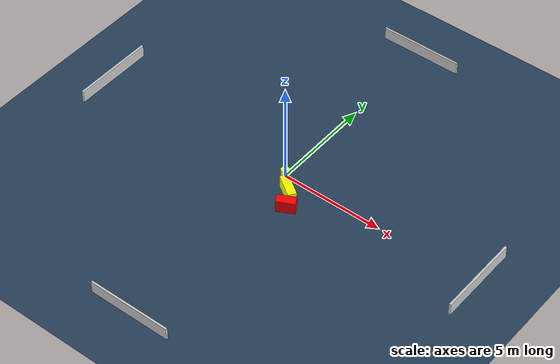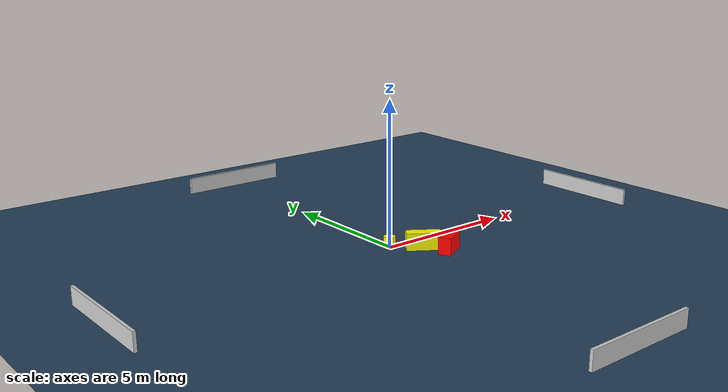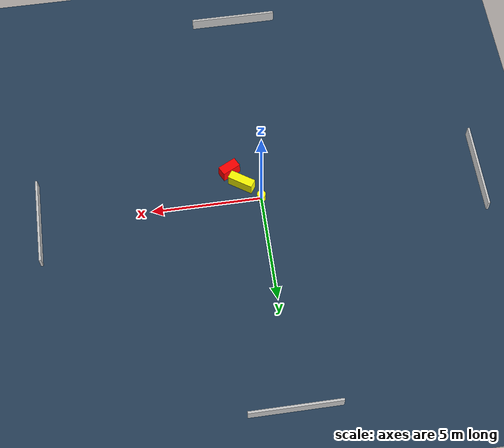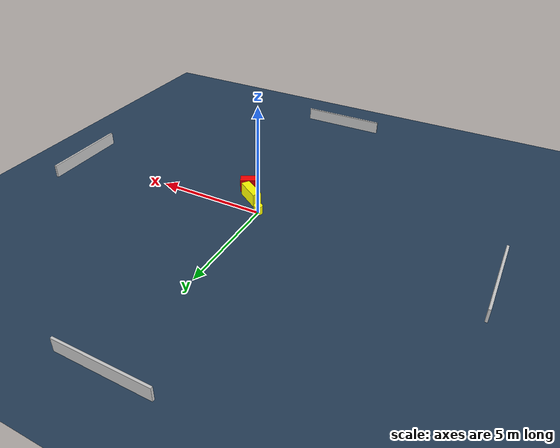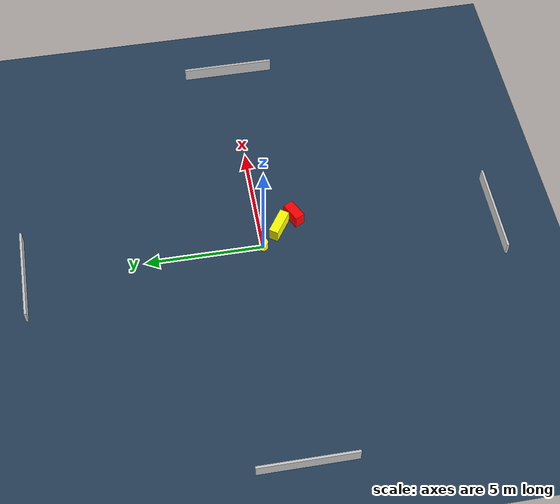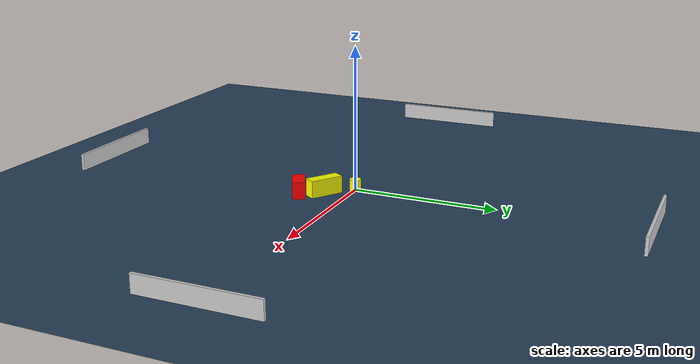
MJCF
<?xml version="1.0" ?>
<mujoco model="generated_environment">
  <option timestep="0.01" integrator="RK4" cone="elliptic"/>
  <default>
    <geom density="1"/>
  </default>
  <asset>
    <texture builtin="gradient" height="3072" name="skybox" rgb1="0.3 0.5 0.7" rgb2="0 0 0" type="skybox" width="512"/>
    <texture builtin="checker" height="300" name="groundplane" rgb1="0.2 0.3 0.4" rgb2="0.1 0.2 0.3" type="2d" width="300"/>
    <material name="groundplane" reflectance="0.2" texrepeat="5 5" texture="groundplane"/>
  </asset>
  <worldbody>
    <light dir="0 0 -1" directional="true" pos="0 0 1.5"/>
    <geom condim="3" friction="0.5 0.005 0.001" material="groundplane" name="floor" pos="0 0 0" size="0 0 0.05" type="plane"/>
    <body name="walls">
      <geom name="wall_1" condim="4" pos="-10.0 0.0 0.3" rgba="0.800000011920929 0.800000011920929 0.800000011920929 1.0" size="0.05 2.0 0.3" type="box"/>
      <geom name="wall_2" condim="4" pos="10.0 0.0 0.3" rgba="0.800000011920929 0.800000011920929 0.800000011920929 1.0" size="0.05 2.0 0.3" type="box"/>
      <geom name="wall_3" condim="4" pos="0.0 -10.0 0.3" rgba="0.800000011920929 0.800000011920929 0.800000011920929 1.0" size="2.0 0.05 0.3" type="box"/>
      <geom name="wall_4" condim="4" pos="0.0 10.0 0.3" rgba="0.800000011920929 0.800000011920929 0.800000011920929 1.0" size="2.0 0.05 0.3" type="box"/>
    </body>
    <body name="robot">
      <joint name="joint_x" type="slide" pos="0 0 0" axis="1 0 0"/>
      <joint name="joint_y" type="slide" pos="0 0 0" axis="0 1 0"/>
      <geom name="robot" type="cylinder" pos="0.0 0.0 0.2" size="0.2 0.2 0.0" mass="5.0" friction="1.0 0.005 0.0001" condim="4" rgba="1.0 1.0 0.0 1.0"/>
    </body>
    <body name="obstacle_1_movable">
      <geom name="obstacle_1_movable" condim="4" pos="0.7966639913873959 -0.8047500474984144 0.3" euler="0 0 145.9152177150231" friction="0.0 0.005 0.001" rgba="1.0 1.0 0.0 1.0" size="0.5889052407922495 0.2023875487334921 0.3" type="box" mass="0.1"/>
      <joint type="free"/>
    </body>
    <body name="obstacle_2_static">
      <geom name="obstacle_2_static" condim="4" pos="1.2668995496577775 -1.5275176748166917 0.3" euler="0 0 117.42095841629478" friction="0.0 0.005 0.001" rgba="1.0 0.0 0.0 1.0" size="0.221396791657422 0.4367119020514564 0.3" type="box"/>
    </body>
  </worldbody>
  <actuator>
    <motor name="actuator_x" joint="joint_x" gear="1" ctrlrange="-1 1"/>
    <motor name="actuator_y" joint="joint_y" gear="1" ctrlrange="-1 1"/>
  </actuator>
</mujoco>
